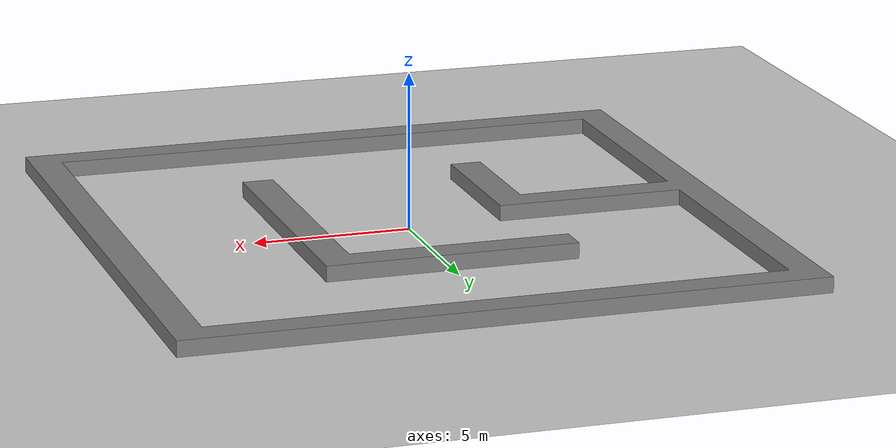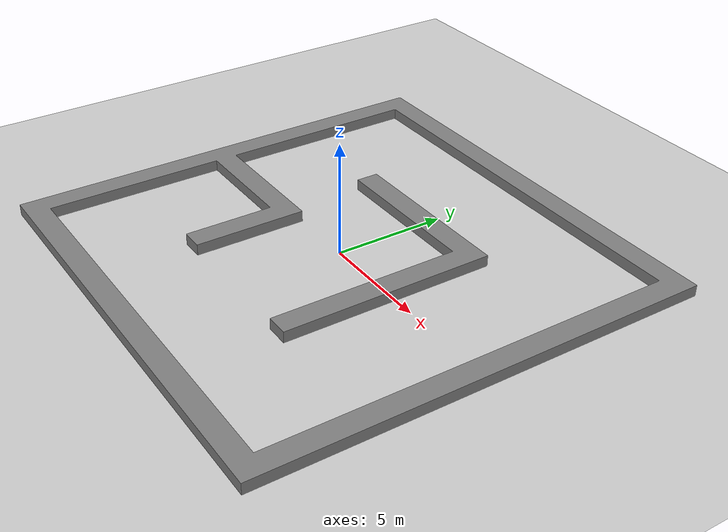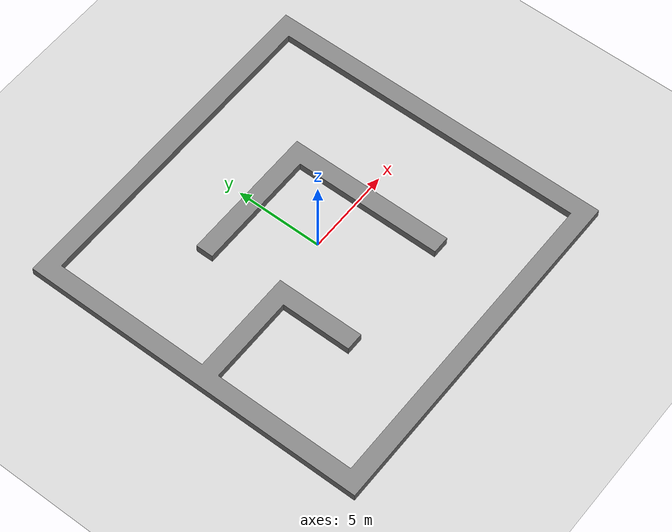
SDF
<?xml version="1.0" ?>
<sdf version="1.11">

  <world name="demo_race_track">
    <physics name='1ms' type='ignored'>
      <max_step_size>0.001</max_step_size>
      <real_time_factor>1</real_time_factor>
      <real_time_update_rate>1000</real_time_update_rate>
    </physics>
    <plugin name='gz::sim::systems::Physics' filename='gz-sim-physics-system'/>
    <plugin name='gz::sim::systems::Sensors' filename='gz-sim-sensors-system'>
      <render_engine>ogre2</render_engine>
    </plugin>
    <plugin filename="gz-sim-imu-system" name="gz::sim::systems::Imu"></plugin>
    <plugin name='gz::sim::systems::SceneBroadcaster' filename='gz-sim-scene-broadcaster-system'/>
    <plugin name='gz::sim::systems::UserCommands' filename='gz-sim-user-commands-system'/>
    <gravity>0 0 -9.8000000000000007</gravity>
    <magnetic_field>5.5644999999999998e-06 2.2875799999999999e-05 -4.2388400000000002e-05</magnetic_field>
    <atmosphere type='adiabatic'/>
    <scene>
      <ambient>0.400000006 0.400000006 0.400000006 1</ambient>
      <background>0.699999988 0.699999988 0.699999988 1</background>
      <shadows>true</shadows>
    </scene>

    <light type="directional" name="sun">
      <cast_shadows>true</cast_shadows>
      <pose>0 0 10 0 0 0</pose>
      <diffuse>0.8 0.8 0.8 1</diffuse>
      <specular>0.2 0.2 0.2 1</specular>
      <attenuation>
        <range>1000</range>
        <constant>0.9</constant>
        <linear>0.01</linear>
        <quadratic>0.001</quadratic>
      </attenuation>
      <direction>-0.5 0.1 -0.9</direction>
    </light>

    <model name="ground_plane">
      <static>true</static>
      <link name="link">
        <collision name="collision">
          <geometry>
            <plane>
              <normal>0 0 1</normal>
              <size>100 100</size>
            </plane>
          </geometry>
        </collision>

        <visual name="visual">
          <geometry>
            <plane>
              <normal>0 0 1</normal>
              <size>100 100</size>
            </plane>
          </geometry>
          <material>
            <ambient>0.8 0.8 0.8 1</ambient>
            <diffuse>0.8 0.8 0.8 1</diffuse>
            <specular>0.8 0.8 0.8 1</specular>
          </material>
        </visual>
      </link>
    </model>

    <model name="stl_wall">
        <pose>10.0 -10.0 0.0 0 0 -1.57079632679</pose>
        <static>true</static>
        <link name="link">
        <collision name="collision">
            <geometry>
            <mesh>
                <uri>/home/alejo/mrad_ws_2601_charlie_repo/src/charlie_gazebo/models/DemoRaceTrack.stl</uri>
                <scale>0.002 0.002 0.0005</scale>
            </mesh>

            </geometry>
        </collision>

        <visual name="visual">
            <geometry>
            <mesh>
                <uri>/home/alejo/mrad_ws_2601_charlie_repo/src/charlie_gazebo/models/DemoRaceTrack.stl</uri>
                <scale>0.002 0.002 0.0005</scale>
            </mesh>

            </geometry>
            <material>
                <ambient>0.5 0.5 0.5 1</ambient>
                <diffuse>0.5 0.5 0.5 1</diffuse>
                <specular>0.5 0.5 0.5 1</specular>
            </material>
        </visual>
        </link>
    </model>

  </world>
</sdf>
